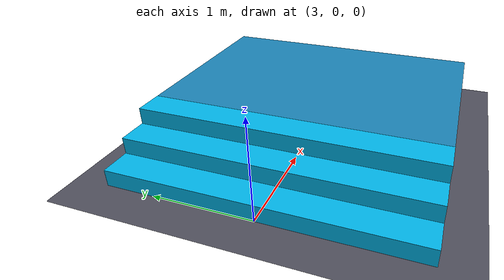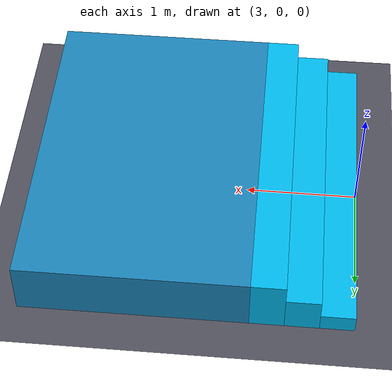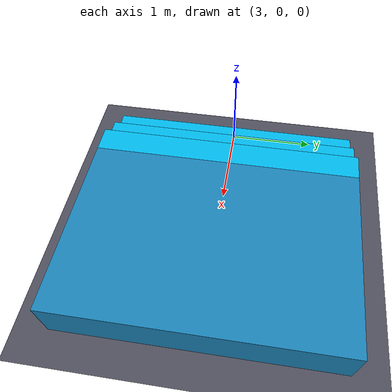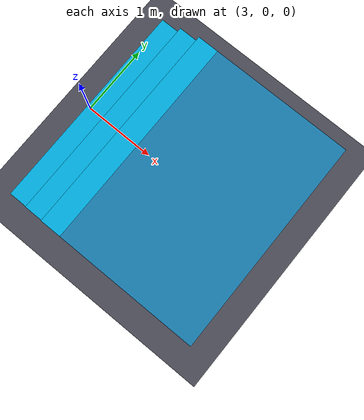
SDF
<?xml version="1.0" ?>
<sdf version="1.8">
  <world name="blondel_stairs_world">
    <physics name="1ms" type="ignored">
      <max_step_size>0.001</max_step_size>
      <real_time_factor>1.0</real_time_factor>
    </physics>

    <!-- Plugins do Mundo -->
    <plugin filename="gz-sim-physics-system" name="gz::sim::systems::Physics"/>
    <plugin filename="gz-sim-user-commands-system" name="gz::sim::systems::UserCommands"/>
    <plugin filename="gz-sim-scene-broadcaster-system" name="gz::sim::systems::SceneBroadcaster"/>
    <plugin filename="gz-sim-sensors-system" name="gz::sim::systems::Sensors">
      <render_engine>ogre2</render_engine>
    </plugin>

    <!-- Iluminação Solar -->
    <light type="directional" name="sun">
      <cast_shadows>true</cast_shadows>
      <pose>0 0 10 0 0 0</pose>
      <diffuse>0.8 0.8 0.8 1</diffuse>
      <specular>0.2 0.2 0.2 1</specular>
      <direction>-0.5 0.1 -0.9</direction>
    </light>

    <!-- Solo Principal -->
    <model name="ground_plane">
      <static>true</static>
      <link name="link">
        <collision name="collision">
          <geometry><plane><normal>0 0 1</normal><size>100 100</size></plane></geometry>
          <surface>
            <friction>
              <ode><mu>0.85</mu><mu2>0.85</mu2></ode>
            </friction>
          </surface>
        </collision>
        <visual name="visual">
          <geometry><plane><normal>0 0 1</normal><size>100 100</size></plane></geometry>
          <material>
            <ambient>0.2 0.2 0.25 1</ambient>
            <diffuse>0.3 0.3 0.35 1</diffuse>
          </material>
        </visual>
      </link>
    </model>

    <!-- Escadaria de Blondel Padrão (NBR 9050: E = 17cm, P = 30cm, Largura = 3.0m) -->
    <model name="blondel_staircase">
      <static>true</static>
      <pose>3.0 0 0 0 0 0</pose>

      <!-- Degrau 1 -->
      <link name="step_1">
        <pose>0.15 0 0.085 0 0 0</pose>
        <collision name="c1"><geometry><box><size>0.30 3.0 0.17</size></box></geometry></collision>
        <visual name="v1">
          <geometry><box><size>0.30 3.0 0.17</size></box></geometry>
          <material><ambient>0.0 0.7 0.9 1</ambient><diffuse>0.0 0.7 0.9 1</diffuse></material>
        </visual>
      </link>

      <!-- Degrau 2 -->
      <link name="step_2">
        <pose>0.45 0 0.17 0 0 0</pose>
        <collision name="c2"><geometry><box><size>0.30 3.0 0.34</size></box></geometry></collision>
        <visual name="v2">
          <geometry><box><size>0.30 3.0 0.34</size></box></geometry>
          <material><ambient>0.0 0.7 0.9 1</ambient><diffuse>0.0 0.7 0.9 1</diffuse></material>
        </visual>
      </link>

      <!-- Degrau 3 -->
      <link name="step_3">
        <pose>0.75 0 0.255 0 0 0</pose>
        <collision name="c3"><geometry><box><size>0.30 3.0 0.51</size></box></geometry></collision>
        <visual name="v3">
          <geometry><box><size>0.30 3.0 0.51</size></box></geometry>
          <material><ambient>0.0 0.7 0.9 1</ambient><diffuse>0.0 0.7 0.9 1</diffuse></material>
        </visual>
      </link>

      <!-- Patamar Superior -->
      <link name="platform">
        <pose>1.90 0 0.255 0 0 0</pose>
        <collision name="cp"><geometry><box><size>2.0 3.0 0.51</size></box></geometry></collision>
        <visual name="vp">
          <geometry><box><size>2.0 3.0 0.51</size></box></geometry>
          <material><ambient>0.1 0.5 0.7 1</ambient><diffuse>0.1 0.5 0.7 1</diffuse></material>
        </visual>
      </link>
    </model>

  </world>
</sdf>
